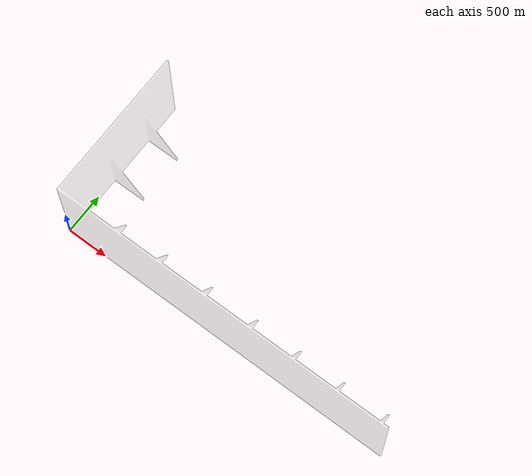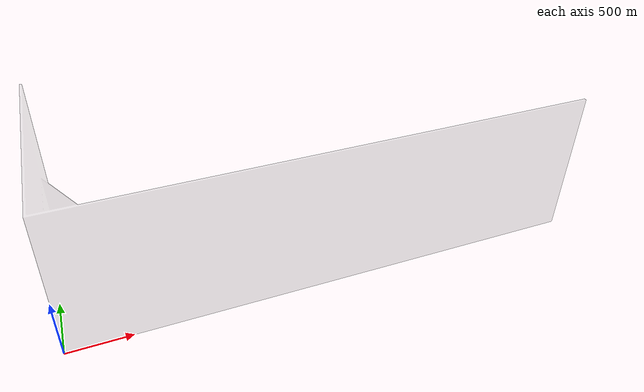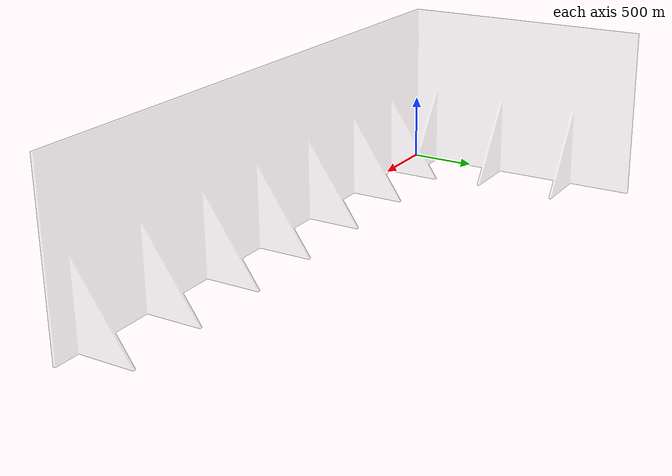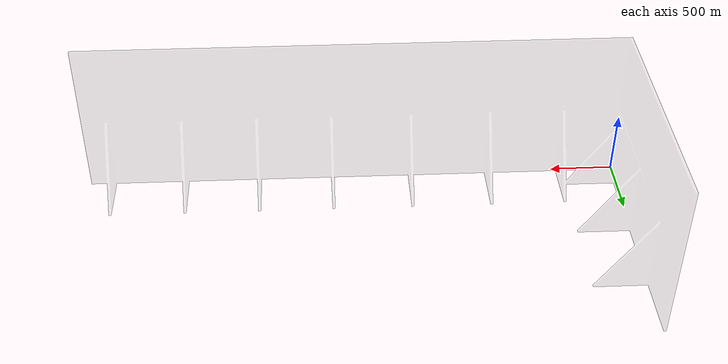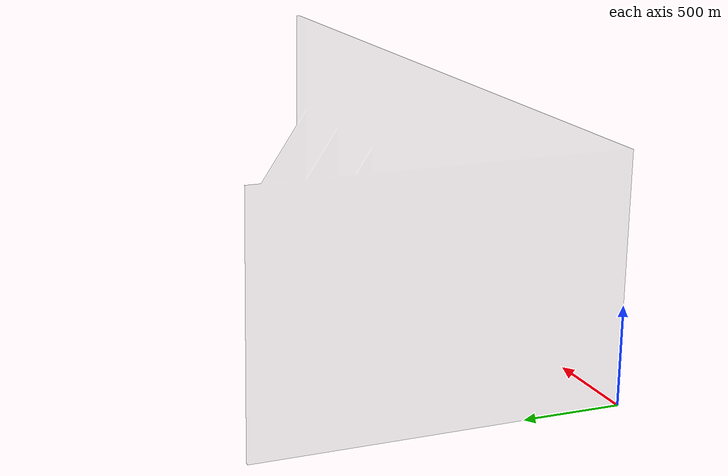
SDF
<?xml version="1.0" ?>
<sdf version="1.4">
  <model name="paredes_esferovite_v4">
    <static>true</static>
    <link name="link">
      <inertial>
        <mass>1000</mass>
      </inertial>
      <collision name="collision">
        <geometry>
          <mesh>
            <uri>model://paredes_esferovite_v4/meshes/paredes_esferovite_v4.stl</uri>
          </mesh>
        </geometry>
      </collision>
      <visual name="visual">
        <transparency>0.75</transparency>
        <geometry>
          <mesh>
            <uri>model://paredes_esferovite_v4/meshes/paredes_esferovite_v4.stl</uri>
          </mesh>
        </geometry>
      </visual>
    </link>
  </model>
</sdf>
